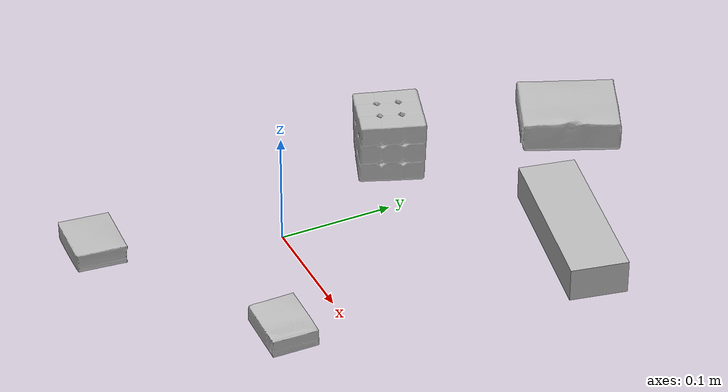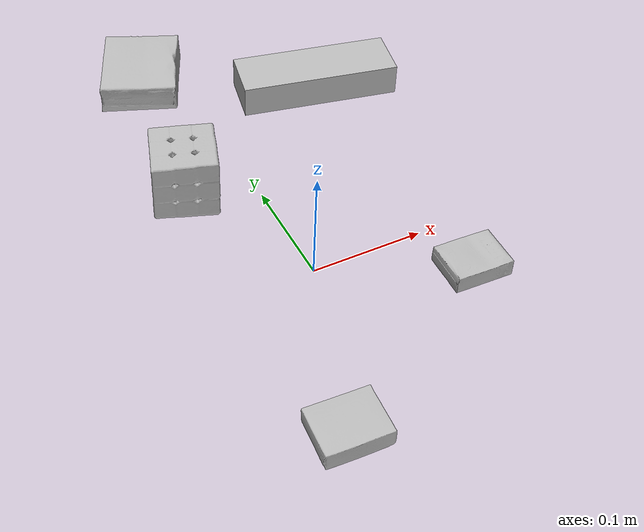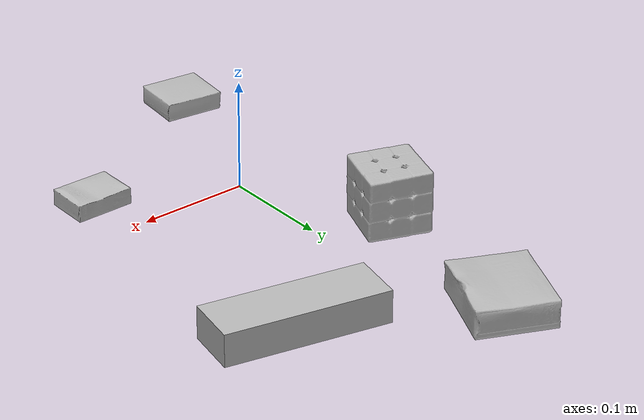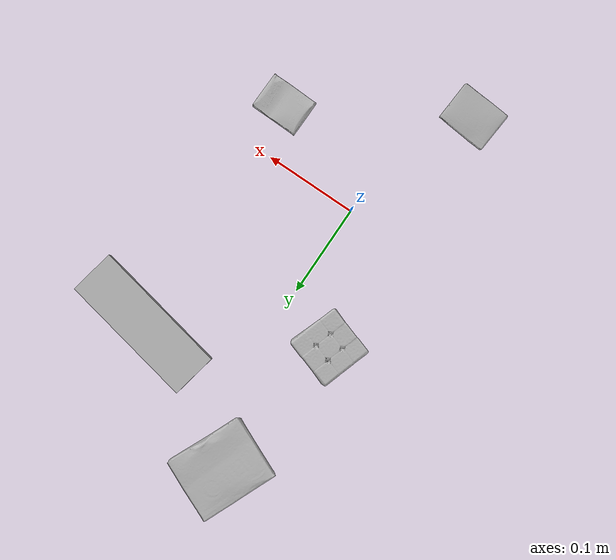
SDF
<sdf version="1.4">
  <world name="default">
    <light name="light1" type="point">
      <pose>0 0 1 0 0 0</pose>
      <diffuse>3 3 3 1</diffuse>
      <specular>3 3 3 1</specular>
    </light>
    <light name="light2" type="point">
      <pose>0 0.5 2 0 0 0</pose>
      <diffuse>1 1 1 1</diffuse>
      <specular>1 1 1 1</specular>
    </light>
    <light name="light3" type="point">
      <pose>0 0.5 2 0 0 0</pose>
      <diffuse>3 3 3 1</diffuse>
      <specular>3 3 3 1</specular>
    </light>
    <scene>
      <ambient>0.7 0.7 0.7</ambient>
    </scene>
    <model name="box1">
      <link name="link_box1">
        <collision name="default">
          <geometry>
            <mesh>
              <uri>model://jenga/collision_meshes/collision.obj</uri>
              <scale>1.0 1.0 1.0</scale>
            </mesh>
          </geometry>
          <surface>
            <friction>
              <ode>
                <mu>0.5</mu>
                <mu2>0.5</mu2>
              </ode>
            </friction>
          <contact>
        <ode>
            <max_vel>0</max_vel>
            <min_depth>0.0001</min_depth>
            <kp>1e8</kp>
        </ode>
    </contact></surface>
        </collision>
        <visual name="default">
          <geometry>
            <mesh>
              <uri>model://jenga/visual_meshes/visual.dae</uri>
              <scale>1.0 1.0 1.0</scale>
            </mesh>
          </geometry>
        </visual>
        <inertial>
          <mass>0.2062758058309555</mass>
          <pose>-2.502855807051674e-07 -0.00010250010382151231 -4.092339804628864e-05 0.0 -7.342154049184251e-07 0.0</pose>
          <inertia>
            <ixx>5.7081514e-05</ixx>
            <iyy>0.0003867828</iyy>
            <izz>0.00041292355</izz>
            <ixy>0</ixy>
            <ixz>0</ixz>
            <iyz>0</iyz>
          </inertia>
        </inertial>
      </link>
      <pose>0.11150062084197998 0.2165047526359558 0.014999994076788425 1.8706066857151524e-08 -9.964912590988462e-10 2.9408257954641233</pose>
    </model>
    <model name="box2">
      <link name="link_box2">
        <collision name="default">
          <geometry>
            <mesh>
              <uri>model://cracker_box/collision_meshes/collision.obj</uri>
              <scale>0.25 0.25 0.25</scale>
            </mesh>
          </geometry>
          <surface>
            <friction>
              <ode>
                <mu>0.5</mu>
                <mu2>0.5</mu2>
              </ode>
            </friction>
          <contact>
        <ode>
            <max_vel>0</max_vel>
            <min_depth>0.0001</min_depth>
            <kp>1e8</kp>
        </ode>
    </contact></surface>
        </collision>
        <visual name="default">
          <geometry>
            <mesh>
              <uri>model://cracker_box/visual_meshes/visual.dae</uri>
              <scale>0.25 0.25 0.25</scale>
            </mesh>
          </geometry>
        </visual>
        <inertial>
          <mass>0.023937078192830086</mass>
          <pose>0.00023660386796109378 6.358562677633017e-05 -0.00042573839891701937 -0.00031620780222672953 -0.011106490531565828 0.0025467947702904154</pose>
          <inertia>
            <ixx>3.8053279e-06</ixx>
            <iyy>6.2833433e-06</iyy>
            <izz>8.966907e-06</izz>
            <ixy>0</ixy>
            <ixz>0</ixz>
            <iyz>0</iyz>
          </inertia>
        </inertial>
      </link>
      <pose>0.11834068596363068 -0.05268184095621109 0.009096028283238411 -0.014050681947961632 -0.005016635354403272 3.1140200193610728</pose>
    </model>
    <model name="box3">
      <link name="link_box3">
        <collision name="default">
          <geometry>
            <mesh>
              <uri>model://pudding_box/collision_meshes/collision.obj</uri>
              <scale>0.5 0.5 0.5</scale>
            </mesh>
          </geometry>
          <surface>
            <friction>
              <ode>
                <mu>0.5</mu>
                <mu2>0.5</mu2>
              </ode>
            </friction>
          <contact>
        <ode>
            <max_vel>0</max_vel>
            <min_depth>0.0001</min_depth>
            <kp>1e8</kp>
        </ode>
    </contact></surface>
        </collision>
        <visual name="default">
          <geometry>
            <mesh>
              <uri>model://pudding_box/visual_meshes/visual.dae</uri>
              <scale>0.5 0.5 0.5</scale>
            </mesh>
          </geometry>
        </visual>
        <inertial>
          <mass>0.06577561050653458</mass>
          <pose>0.0002447410661261529 0.00040339428232982755 -0.00025944135268218815 0.005213102261421096 -0.006603797796883786 0.020079827023418362</pose>
          <inertia>
            <ixx>1.8588986e-05</ixx>
            <iyy>1.2506803e-05</iyy>
            <izz>2.7451497e-05</izz>
            <ixy>0</ixy>
            <ixz>0</ixz>
            <iyz>0</iyz>
          </inertia>
        </inertial>
      </link>
      <pose>-0.05081537738442421 -0.15123151242733002 0.009862903505563736 0.022348518039236466 -0.011391741208518907 -1.648068253645564</pose>
    </model>
    <model name="box4">
      <link name="link_box4">
        <collision name="default">
          <geometry>
            <mesh>
              <uri>model://gelatin_box/collision_meshes/collision.obj</uri>
              <scale>1.0 1.0 1.0</scale>
            </mesh>
          </geometry>
          <surface>
            <friction>
              <ode>
                <mu>0.5</mu>
                <mu2>0.5</mu2>
              </ode>
            </friction>
          <contact>
        <ode>
            <max_vel>0</max_vel>
            <min_depth>0.0001</min_depth>
            <kp>1e8</kp>
        </ode>
    </contact></surface>
        </collision>
        <visual name="default">
          <geometry>
            <mesh>
              <uri>model://gelatin_box/visual_meshes/visual.dae</uri>
              <scale>1.0 1.0 1.0</scale>
            </mesh>
          </geometry>
        </visual>
        <inertial>
          <mass>0.21051041781902313</mass>
          <pose>0.000431961816502735 0.00011156871914863586 -0.0003640321083366871 -0.0010503719683328595 -0.0047558182256164224 0.016440557608480007</pose>
          <inertia>
            <ixx>0.0001486032</ixx>
            <iyy>0.00010614647</iyy>
            <izz>0.00022620716</izz>
            <ixy>0</ixy>
            <ixz>0</ixz>
            <iyz>0</iyz>
          </inertia>
        </inertial>
      </link>
      <pose>-0.038786355406045914 0.29530274868011475 0.01516831573098898 0.005597433772917064 -0.007304538478987678 -0.421416000818937</pose>
    </model>
    <model name="box5">
      <link name="link_box5">
        <collision name="default">
          <geometry>
            <mesh>
              <uri>model://rubiks_cube/collision_meshes/collision.obj</uri>
              <scale>1.0 1.0 1.0</scale>
            </mesh>
          </geometry>
          <surface>
            <friction>
              <ode>
                <mu>0.5</mu>
                <mu2>0.5</mu2>
              </ode>
            </friction>
          <contact>
        <ode>
            <max_vel>0</max_vel>
            <min_depth>0.0001</min_depth>
            <kp>1e8</kp>
        </ode>
    </contact></surface>
        </collision>
        <visual name="default">
          <geometry>
            <mesh>
              <uri>model://rubiks_cube/visual_meshes/visual.dae</uri>
              <scale>1.0 1.0 1.0</scale>
            </mesh>
          </geometry>
        </visual>
        <inertial>
          <mass>0.13810032606124878</mass>
          <pose>2.6721041649580002e-05 5.256967051536776e-05 -7.264316082000732e-06 -0.05467240103362065 -0.09813937396878175 -0.03445717948301123</pose>
          <inertia>
            <ixx>7.63097e-05</ixx>
            <iyy>7.595384e-05</iyy>
            <izz>7.694205e-05</izz>
            <ixy>0</ixy>
            <ixz>0</ixz>
            <iyz>0</iyz>
          </inertia>
        </inertial>
      </link>
      <pose>-0.05987312272191048 0.12926539778709412 0.028678974136710167 -3.3119734039503595e-06 -9.283041633113854e-07 2.8207971294391996</pose>
    </model>
  <physics type="ode">
      <max_contacts>50</max_contacts>
      <ode>
        <solver>
          <type>quick</type>
          <iters>75</iters>
        </solver>
        <constraints>
          <contact_max_correcting_vel>0</contact_max_correcting_vel>
          <contact_surface_layer>0</contact_surface_layer>
        </constraints>
      </ode>
    </physics></world>
</sdf>
